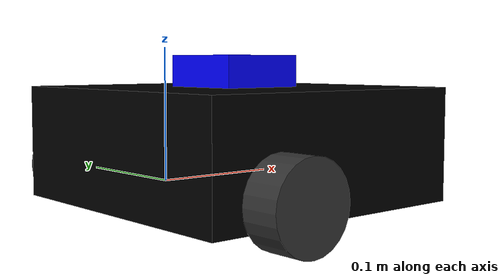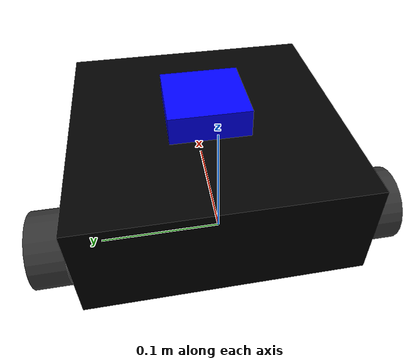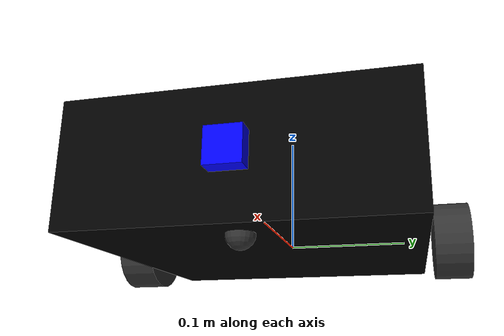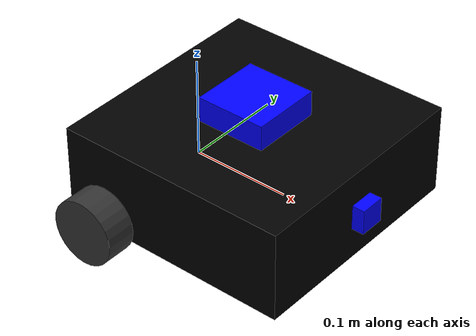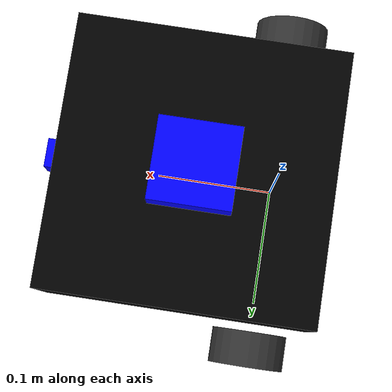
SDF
<?xml version="1.0" ?>
<sdf version="1.8">
    <model name='diff_drive'>

      <!-- Placed at center of wheels -->
      <link name="base_link">
      </link>

      <joint name="chassis_joint" type="fixed">
        <parent>base_link</parent>
        <child>chassis</child>
        <pose relative_to='base_link'>-0.05 0 -0.0205 0 0 0</pose>
      </joint>

      <link name='chassis'>
        <pose relative_to='chassis_joint'>0.1175 0 0.045 0 0 0</pose>
        <inertial>
          <mass>10</mass>
          <inertia>
            <ixx>0.126164</ixx>
            <ixy>0</ixy>
            <ixz>0</ixz>
            <iyy>0.416519</iyy>
            <iyz>0</iyz>
            <izz>0.481014</izz>
          </inertia>
        </inertial>
        <visual name='visual_chassis'>
          <geometry>
            <box>
              <!-- Length width height -->
              <size>0.235 0.235 0.09</size>
            </box>
          </geometry>
          <material>
            <ambient>0 0 0 1</ambient>
            <diffuse>0 0 0 1</diffuse>
            <specular>0.0 0.0 0.0 1</specular>
          </material>
        </visual>
        <collision name='collision_chassis'>
          <geometry>
            <box>
              <size>0.235 0.235 0.009</size>
            </box>
          </geometry>
        </collision>
      </link>

      <!-- Left Wheel -->
      <joint name='left_wheel_joint' type='revolute'>
        <parent>base_link</parent>
        <child>left_wheel</child>
        <!-- Wheel is 14 cm out from center of base link
        so that sphere is not flat it is turned by pi/2 rad -->
        <pose relative_to="base_link">0 0.14 0 0 0 0</pose>

        <axis>
          <xyz>0 1 0</xyz>
          <limit>
            <lower>-1.79769e+308</lower>
            <upper>1.79769e+308</upper>
          </limit>
        </axis>
      </joint>

       <link name='left_wheel'>
       <pose relative_to="left_wheel_joint">0 0 0 1.5707 0 0</pose>
        <inertial>
          <mass>0.1</mass>
          <inertia>
            <ixx>0.145833</ixx>
            <ixy>0</ixy>
            <ixz>0</ixz>
            <iyy>0.145833</iyy>
            <iyz>0</iyz>
            <izz>0.125</izz>
          </inertia>
        </inertial>
        <visual name='visual_left_wheel'>
          <geometry>
            <cylinder>
              <!-- 6.5 cmd diameter and 3 cm thick -->
              <radius>0.0325</radius>
              <length>0.03</length>
            </cylinder>
          </geometry>
          <material>
            <ambient>0.2 0.2 0.2 1</ambient>
            <diffuse>0.2 0.2 0.2 1</diffuse>
            <specular>0.2 0.2 0.2 1</specular>
          </material>
        </visual>
        <collision name='collision_left_wheel'>
          <geometry>
            <cylinder>
              <!-- 6.5 cmd diameter and 3 cm thick -->
              <radius>0.0325</radius>
              <length>0.03</length>
            </cylinder>
          </geometry>
        </collision>
      </link>

      <!-- Right wheel -->
      <joint name='right_wheel_joint' type='revolute'>
        <parent>base_link</parent>
        <child>right_wheel</child>
        <!-- Wheel is 14 cm out from center of base link
        so that sphere is not flat it is turned by pi/2 rad -->
      <pose relative_to="base_link">0 -0.14 0 0 0 0</pose>
        <axis>
          <xyz>0 1 0</xyz>
          <limit>
            <lower>-1.79769e+308</lower>
            <upper>1.79769e+308</upper>
          </limit>
        </axis>
      </joint>

      <link name='right_wheel'>
      <pose relative_to="right_wheel_joint">0 0 0 -1.5707 0 0</pose>
       <inertial>
          <mass>0.1</mass>
          <inertia>
            <ixx>0.145833</ixx>
            <ixy>0</ixy>
            <ixz>0</ixz>
            <iyy>0.145833</iyy>
            <iyz>0</iyz>
            <izz>0.125</izz>
          </inertia>
        </inertial>
        <visual name='visual_left_wheel'>
          <geometry>
            <cylinder>
              <!-- 6.5 cmd diameter and 3 cm thick -->
              <radius>0.0325</radius>
              <length>0.03</length>
            </cylinder>

          </geometry>
          <material>
            <ambient>0.2 0.2 0.2 1</ambient>
            <diffuse>0.2 0.2 0.2 1</diffuse>
            <specular>0.2 0.2 0.2 1</specular>
          </material>
        </visual>
        <collision name='collision_left_wheel'>
          <geometry>
             <cylinder>
              <!-- 6.5 cmd diameter and 3 cm thick -->
              <radius>0.0325</radius>
              <length>0.03</length>
            </cylinder>
          </geometry>
        </collision>
      </link>

      <joint name='caster_wheel_joint' type='ball'>
        <parent>chassis</parent>
        <child>caster_wheel</child>
      </joint>

      <link name='caster_wheel'>
      <!-- 9 cm forward from center of chassis and half height of chassis plus half heigh of caster wheel 1 cm -->
        <pose relative_to="chassis"> 0.09 0 -0.046 0 0 0</pose>
        <inertial>
          <mass>1</mass>
          <inertia>
            <ixx>0.1</ixx>
            <ixy>0</ixy>
            <ixz>0</ixz>
            <iyy>0.1</iyy>
            <iyz>0</iyz>
            <izz>0.1</izz>
          </inertia>
        </inertial>
        <visual name='visual_caster'>
          <geometry>
            <sphere>
              <radius>0.01</radius>
            </sphere>
          </geometry>
          <material>
            <ambient>0.2 0.2 0.2 1</ambient>
            <diffuse>0.2 0.2 0.2 1</diffuse>
            <specular>0.2 0.2 0.2 1</specular>
          </material>
        </visual>
        <collision name='collision_caster'>
          <geometry>
            <sphere>
              <radius>0.01</radius>
            </sphere>
          </geometry>
        </collision>
      </link>

      <!-- LIDAR -->
      <joint name='lidar_joint' type='fixed'>
        <parent>chassis</parent>
        <child>lidar_link</child>
      </joint>

      <link name="lidar_link">
        <pose relative_to="chassis">0 0 0.045 0 0 0</pose>
        <inertial>
          <mass>0.1</mass>
          <inertia>
            <ixx>0.000166667</ixx>
            <iyy>0.000166667</iyy>
            <izz>0.000166667</izz>
          </inertia>
        </inertial>
        <collision name="collision">
          <geometry>
            <box>
              <size>0.07 0.07 0.05</size>
            </box>
          </geometry>
        </collision>
        <visual name="visual">
          <geometry>
            <box>
              <size>0.07 0.07 0.05</size>
            </box>
          </geometry>
          <material>
            <ambient>0 0 1 1</ambient>
            <diffuse>0 0 1 1</diffuse>
            <specular>0.0 0.0 1 1</specular>
          </material>
        </visual>
        <sensor name='gpu_lidar' type='gpu_lidar'>
          <pose>0 0 0 0 0 0</pose>
          <topic>scan</topic>
          <ignition_frame_id>diff_drive/lidar_link</ignition_frame_id>
          <update_rate>10</update_rate>
          <lidar>
            <scan>
              <horizontal>
                <samples>640</samples>
                <resolution>1</resolution>
                <min_angle>-3.14</min_angle>
                <max_angle>3.14</max_angle>
              </horizontal>
              <vertical>
                <samples>1</samples>
                <resolution>1</resolution>
                <min_angle>0.0</min_angle>
                <max_angle>0.0</max_angle>
              </vertical>
            </scan>
            <range>
              <min>0.08</min>
              <max>10.0</max>
              <resolution>0.01</resolution>
            </range>
          </lidar>
          <visualize>true</visualize>
        </sensor>
      </link>

      <!-- CAMERA -->
      <joint name='camera_joint' type='fixed'>
        <parent>chassis</parent>
        <child>camera_link</child>
      </joint>

      <link name="camera_link">
        <pose relative_to="chassis">0.1175 0 0 0 0 0</pose>
        <visual name="visual">
          <geometry>
            <box>
              <size>0.025 0.025 0.025</size>
            </box>
          </geometry>
          <material>
            <ambient>0 0 1 1</ambient>
            <diffuse>0 0 1 1</diffuse>
            <specular>0.0 0.0 1 1</specular>
          </material>
        </visual>
        <sensor name='camera' type='camera'>
          <pose>0 0 0 0 0 0</pose>
          <ignition_frame_id>diff_drive/camera_link</ignition_frame_id>
          <visualize>true</visualize>
          <update_rate>10</update_rate>
          <topic>image</topic>
          <camera>
            <always_on>1</always_on>
            <horizontal_fov>1.089</horizontal_fov>
            <image>
              <format>R8G8B8</format>
              <width>640</width>
              <height>480</height>
            </image>
          </camera>
          <clip>
            <near>0.05</near>
            <far>8.0</far>
          </clip>
        </sensor>
      </link>

      <joint name='camera_optical_joint' type='fixed'>
        <parent>camera_link</parent>
        <child>camera_link_optical</child>
      </joint>

      <link name="camera_link_optical">
        <pose>0 0 0 -1.57079632679 0 -1.57079632679</pose>
      </link>

      <ros2_control name="IgnitionSystem" type="system">
        <hardware>
          <plugin>ign_ros2_control/IgnitionSystem</plugin>
        </hardware>
        <joint name="left_wheel_joint">
          <command_interface name="velocity">
            <param name="min">-10</param>
            <param name="max">10</param>
          </command_interface>
          <state_interface name="position"/>
          <state_interface name="velocity"/>
        </joint>
        <joint name="right_wheel_joint">
          <command_interface name="velocity">
            <param name="min">-10</param>
            <param name="max">10</param>
          </command_interface>
          <state_interface name="position"/>
          <state_interface name="velocity"/>
        </joint>
      </ros2_control>

      <plugin filename="ign_ros2_control-system" name="ign_ros2_control::IgnitionROS2ControlPlugin">
            <parameters>/home/mikaeltrana/Documents/robot/my_bot/install/ros_gz_example_bringup/share/ros_gz_example_bringup/config/my_controller.yaml</parameters>
      </plugin>

      <!-- Needed for keyboard navigation in Gazebo -->
    </model>
</sdf>
